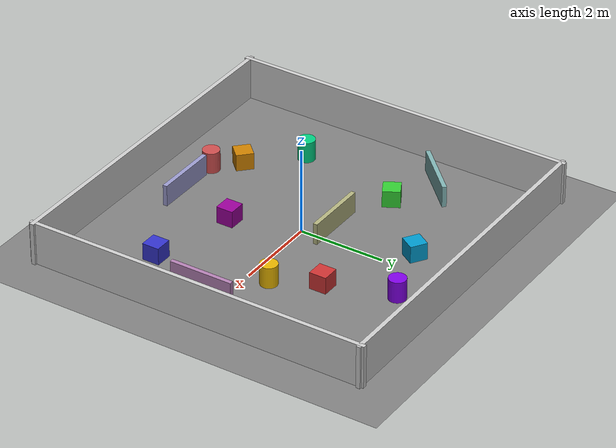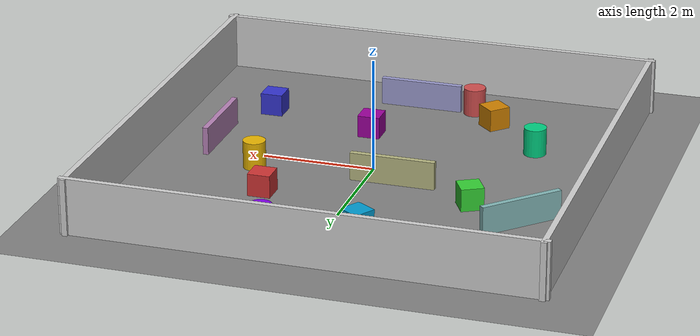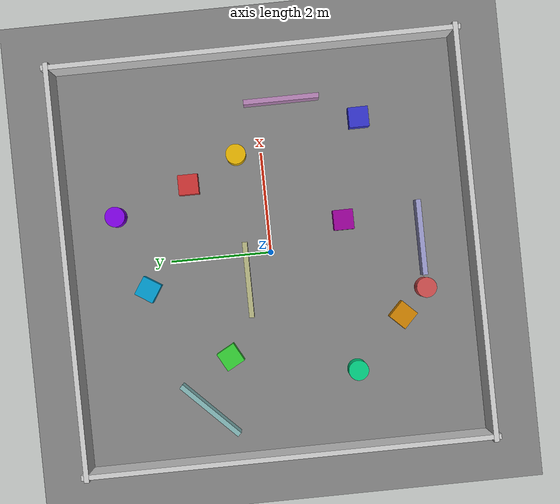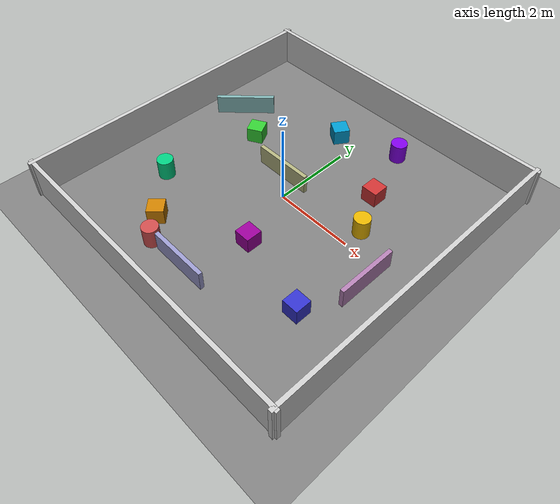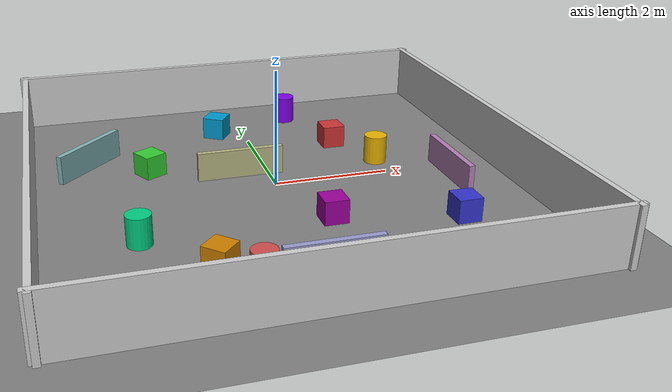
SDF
<?xml version="1.0" ?>
<sdf version="1.9">
  <world name="indoor_world">

    <!-- Physics -->
    <physics name="1ms" type="ode">
      <max_step_size>0.002</max_step_size>
      <real_time_factor>1.0</real_time_factor>
      <real_time_update_rate>500</real_time_update_rate>
      <ode>
        <solver>
          <type>quick</type>
          <iters>150</iters>
          <sor>1.4</sor>
        </solver>
        <constraints>
          <cfm>0.0</cfm>
          <erp>0.2</erp>
          <contact_max_correcting_vel>100.0</contact_max_correcting_vel>
          <contact_surface_layer>0.001</contact_surface_layer>
        </constraints>
      </ode>
    </physics>

    <!-- Plugins -->
    <plugin filename="gz-sim-physics-system"          name="gz::sim::systems::Physics"/>
    <plugin filename="gz-sim-user-commands-system"    name="gz::sim::systems::UserCommands"/>
    <plugin filename="gz-sim-scene-broadcaster-system" name="gz::sim::systems::SceneBroadcaster"/>
    <plugin filename="gz-sim-sensors-system"          name="gz::sim::systems::Sensors">
      <render_engine>ogre2</render_engine>
    </plugin>
    <plugin filename="gz-sim-contact-system"          name="gz::sim::systems::Contact"/>

    <!-- Lighting -->
    <light type="directional" name="sun">
      <cast_shadows>true</cast_shadows>
      <pose>0 0 10 0 0 0</pose>
      <diffuse>0.9 0.9 0.9 1</diffuse>
      <specular>0.2 0.2 0.2 1</specular>
      <direction>-0.5 0.1 -0.9</direction>
      <attenuation>
        <range>1000</range>
        <constant>0.9</constant>
        <linear>0.01</linear>
        <quadratic>0.001</quadratic>
      </attenuation>
    </light>

    <!-- Ambient light -->
    <scene>
      <ambient>0.4 0.4 0.4 1</ambient>
      <background>0.7 0.7 0.7 1</background>
      <shadows>true</shadows>
    </scene>

    <!-- ==================== FLOOR ==================== -->
    <model name="floor">
      <static>true</static>
      <pose>0 0 0 0 0 0</pose>
      <link name="floor_link">
        <collision name="floor_col">
          <geometry><plane><normal>0 0 1</normal><size>10 10</size></plane></geometry>
          <surface>
            <friction><ode><mu>1.0</mu><mu2>1.0</mu2></ode></friction>
            <contact><ode><kp>1e6</kp><kd>100.0</kd></ode></contact>
          </surface>
        </collision>
        <visual name="floor_vis">
          <geometry><plane><normal>0 0 1</normal><size>10 10</size></plane></geometry>
          <material>
            <ambient>0.5 0.5 0.5 1</ambient>
            <diffuse>0.5 0.5 0.5 1</diffuse>
            <specular>0.0 0.0 0.0 1</specular>
          </material>
        </visual>
      </link>
    </model>

    <!-- ==================== WALLS (8m x 8m room) ==================== -->

    <!-- North Wall (y = +4) -->
    <model name="wall_north">
      <static>true</static>
      <pose>0 4 0.5 0 0 0</pose>
      <link name="link">
        <collision name="col">
          <geometry><box><size>8.2 0.1 1.0</size></box></geometry>
        </collision>
        <visual name="vis">
          <geometry><box><size>8.2 0.1 1.0</size></box></geometry>
          <material><ambient>0.8 0.8 0.8 1</ambient><diffuse>0.8 0.8 0.8 1</diffuse></material>
        </visual>
      </link>
    </model>

    <!-- South Wall (y = -4) -->
    <model name="wall_south">
      <static>true</static>
      <pose>0 -4 0.5 0 0 0</pose>
      <link name="link">
        <collision name="col">
          <geometry><box><size>8.2 0.1 1.0</size></box></geometry>
        </collision>
        <visual name="vis">
          <geometry><box><size>8.2 0.1 1.0</size></box></geometry>
          <material><ambient>0.8 0.8 0.8 1</ambient><diffuse>0.8 0.8 0.8 1</diffuse></material>
        </visual>
      </link>
    </model>

    <!-- East Wall (x = +4) -->
    <model name="wall_east">
      <static>true</static>
      <pose>4 0 0.5 0 0 0</pose>
      <link name="link">
        <collision name="col">
          <geometry><box><size>0.1 8.2 1.0</size></box></geometry>
        </collision>
        <visual name="vis">
          <geometry><box><size>0.1 8.2 1.0</size></box></geometry>
          <material><ambient>0.8 0.8 0.8 1</ambient><diffuse>0.8 0.8 0.8 1</diffuse></material>
        </visual>
      </link>
    </model>

    <!-- West Wall (x = -4) -->
    <model name="wall_west">
      <static>true</static>
      <pose>-4 0 0.5 0 0 0</pose>
      <link name="link">
        <collision name="col">
          <geometry><box><size>0.1 8.2 1.0</size></box></geometry>
        </collision>
        <visual name="vis">
          <geometry><box><size>0.1 8.2 1.0</size></box></geometry>
          <material><ambient>0.8 0.8 0.8 1</ambient><diffuse>0.8 0.8 0.8 1</diffuse></material>
        </visual>
      </link>
    </model>

    <!-- ==================== OBSTACLES ==================== -->

    <!-- Box Obstacles (6 boxes, 0.4m cubes) -->
    <model name="box_1">
      <static>true</static>
      <pose>1.5 1.5 0.2 0 0 0</pose>
      <link name="link">
        <collision name="col"><geometry><box><size>0.4 0.4 0.4</size></box></geometry></collision>
        <visual name="vis">
          <geometry><box><size>0.4 0.4 0.4</size></box></geometry>
          <material><ambient>0.8 0.2 0.2 1</ambient><diffuse>0.8 0.2 0.2 1</diffuse></material>
        </visual>
      </link>
    </model>

    <model name="box_2">
      <static>true</static>
      <pose>-2.0 1.0 0.2 0 0 0.5</pose>
      <link name="link">
        <collision name="col"><geometry><box><size>0.4 0.4 0.4</size></box></geometry></collision>
        <visual name="vis">
          <geometry><box><size>0.4 0.4 0.4</size></box></geometry>
          <material><ambient>0.2 0.8 0.2 1</ambient><diffuse>0.2 0.8 0.2 1</diffuse></material>
        </visual>
      </link>
    </model>

    <model name="box_3">
      <static>true</static>
      <pose>2.5 -2.0 0.2 0 0 0</pose>
      <link name="link">
        <collision name="col"><geometry><box><size>0.4 0.4 0.4</size></box></geometry></collision>
        <visual name="vis">
          <geometry><box><size>0.4 0.4 0.4</size></box></geometry>
          <material><ambient>0.2 0.2 0.8 1</ambient><diffuse>0.2 0.2 0.8 1</diffuse></material>
        </visual>
      </link>
    </model>

    <model name="box_4">
      <static>true</static>
      <pose>-1.5 -2.5 0.2 0 0 0.8</pose>
      <link name="link">
        <collision name="col"><geometry><box><size>0.4 0.4 0.4</size></box></geometry></collision>
        <visual name="vis">
          <geometry><box><size>0.4 0.4 0.4</size></box></geometry>
          <material><ambient>0.8 0.5 0.0 1</ambient><diffuse>0.8 0.5 0.0 1</diffuse></material>
        </visual>
      </link>
    </model>

    <model name="box_5">
      <static>true</static>
      <pose>0.5 -1.5 0.2 0 0 0</pose>
      <link name="link">
        <collision name="col"><geometry><box><size>0.4 0.4 0.4</size></box></geometry></collision>
        <visual name="vis">
          <geometry><box><size>0.4 0.4 0.4</size></box></geometry>
          <material><ambient>0.6 0.0 0.6 1</ambient><diffuse>0.6 0.0 0.6 1</diffuse></material>
        </visual>
      </link>
    </model>

    <model name="box_6">
      <static>true</static>
      <pose>-0.5 2.5 0.2 0 0 1.0</pose>
      <link name="link">
        <collision name="col"><geometry><box><size>0.4 0.4 0.4</size></box></geometry></collision>
        <visual name="vis">
          <geometry><box><size>0.4 0.4 0.4</size></box></geometry>
          <material><ambient>0.0 0.6 0.8 1</ambient><diffuse>0.0 0.6 0.8 1</diffuse></material>
        </visual>
      </link>
    </model>

    <!-- Cylinder Obstacles (4 cylinders) -->
    <model name="cylinder_1">
      <static>true</static>
      <pose>2.0 0.5 0.25 0 0 0</pose>
      <link name="link">
        <collision name="col"><geometry><cylinder><radius>0.2</radius><length>0.5</length></cylinder></geometry></collision>
        <visual name="vis">
          <geometry><cylinder><radius>0.2</radius><length>0.5</length></cylinder></geometry>
          <material><ambient>0.9 0.7 0.0 1</ambient><diffuse>0.9 0.7 0.0 1</diffuse></material>
        </visual>
      </link>
    </model>

    <model name="cylinder_2">
      <static>true</static>
      <pose>-2.5 -1.5 0.25 0 0 0</pose>
      <link name="link">
        <collision name="col"><geometry><cylinder><radius>0.2</radius><length>0.5</length></cylinder></geometry></collision>
        <visual name="vis">
          <geometry><cylinder><radius>0.2</radius><length>0.5</length></cylinder></geometry>
          <material><ambient>0.0 0.8 0.5 1</ambient><diffuse>0.0 0.8 0.5 1</diffuse></material>
        </visual>
      </link>
    </model>

    <model name="cylinder_3">
      <static>true</static>
      <pose>1.0 3.0 0.25 0 0 0</pose>
      <link name="link">
        <collision name="col"><geometry><cylinder><radius>0.2</radius><length>0.5</length></cylinder></geometry></collision>
        <visual name="vis">
          <geometry><cylinder><radius>0.2</radius><length>0.5</length></cylinder></geometry>
          <material><ambient>0.5 0.0 0.9 1</ambient><diffuse>0.5 0.0 0.9 1</diffuse></material>
        </visual>
      </link>
    </model>

    <model name="cylinder_4">
      <static>true</static>
      <pose>-1.0 -3.0 0.25 0 0 0</pose>
      <link name="link">
        <collision name="col"><geometry><cylinder><radius>0.2</radius><length>0.5</length></cylinder></geometry></collision>
        <visual name="vis">
          <geometry><cylinder><radius>0.2</radius><length>0.5</length></cylinder></geometry>
          <material><ambient>0.8 0.3 0.3 1</ambient><diffuse>0.8 0.3 0.3 1</diffuse></material>
        </visual>
      </link>
    </model>

    <!-- Wall Segment Obstacles (4 segments) -->
    <model name="wall_seg_1">
      <static>true</static>
      <pose>-0.5 0.5 0.25 0 0 0</pose>
      <link name="link">
        <collision name="col"><geometry><box><size>1.5 0.1 0.5</size></box></geometry></collision>
        <visual name="vis">
          <geometry><box><size>1.5 0.1 0.5</size></box></geometry>
          <material><ambient>0.7 0.7 0.5 1</ambient><diffuse>0.7 0.7 0.5 1</diffuse></material>
        </visual>
      </link>
    </model>

    <model name="wall_seg_2">
      <static>true</static>
      <pose>3.0 -0.5 0.25 0 0 1.5707</pose>
      <link name="link">
        <collision name="col"><geometry><box><size>1.5 0.1 0.5</size></box></geometry></collision>
        <visual name="vis">
          <geometry><box><size>1.5 0.1 0.5</size></box></geometry>
          <material><ambient>0.7 0.5 0.7 1</ambient><diffuse>0.7 0.5 0.7 1</diffuse></material>
        </visual>
      </link>
    </model>

    <model name="wall_seg_3">
      <static>true</static>
      <pose>-3.0 1.5 0.25 0 0 0.7854</pose>
      <link name="link">
        <collision name="col"><geometry><box><size>1.5 0.1 0.5</size></box></geometry></collision>
        <visual name="vis">
          <geometry><box><size>1.5 0.1 0.5</size></box></geometry>
          <material><ambient>0.5 0.7 0.7 1</ambient><diffuse>0.5 0.7 0.7 1</diffuse></material>
        </visual>
      </link>
    </model>

    <model name="wall_seg_4">
      <static>true</static>
      <pose>0.0 -3.0 0.25 0 0 0</pose>
      <link name="link">
        <collision name="col"><geometry><box><size>1.5 0.1 0.5</size></box></geometry></collision>
        <visual name="vis">
          <geometry><box><size>1.5 0.1 0.5</size></box></geometry>
          <material><ambient>0.6 0.6 0.8 1</ambient><diffuse>0.6 0.6 0.8 1</diffuse></material>
        </visual>
      </link>
    </model>

  </world>
</sdf>
